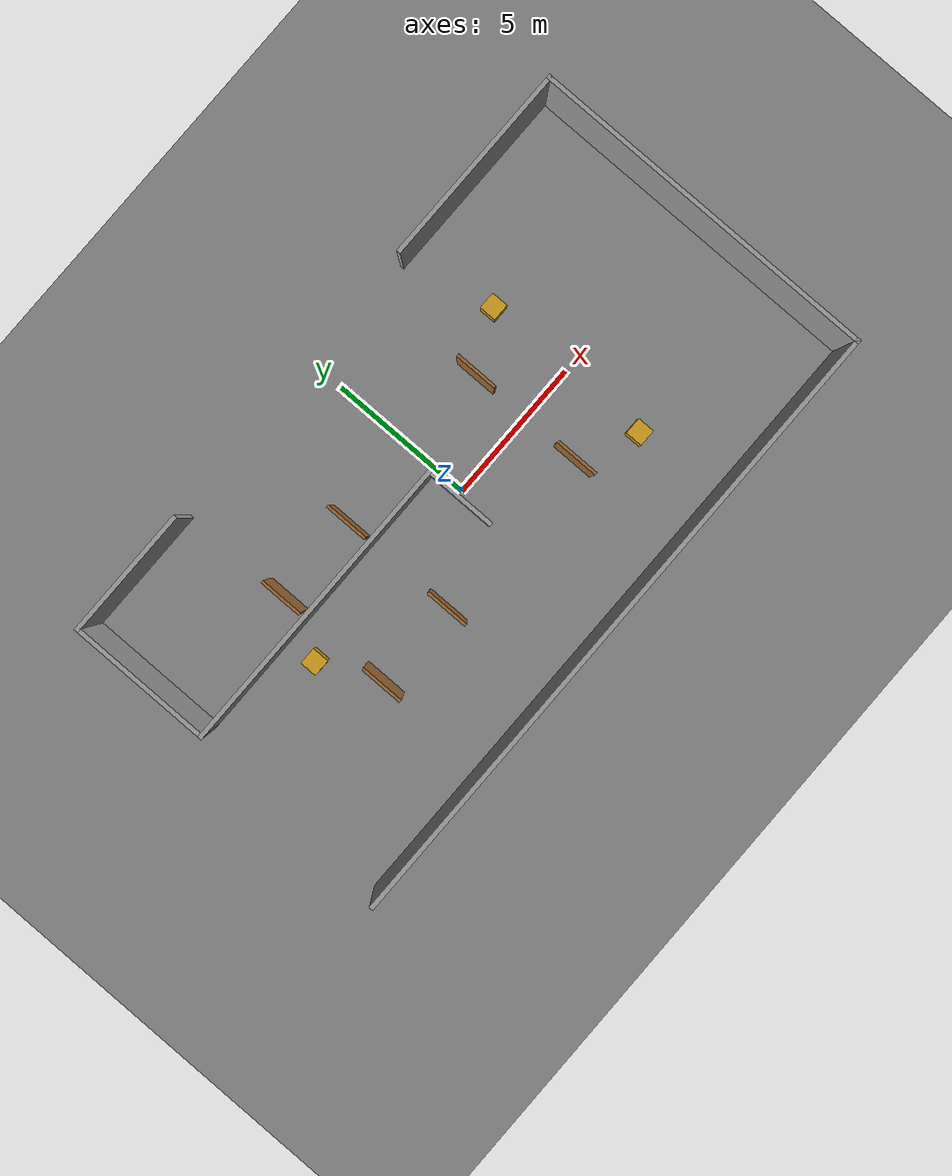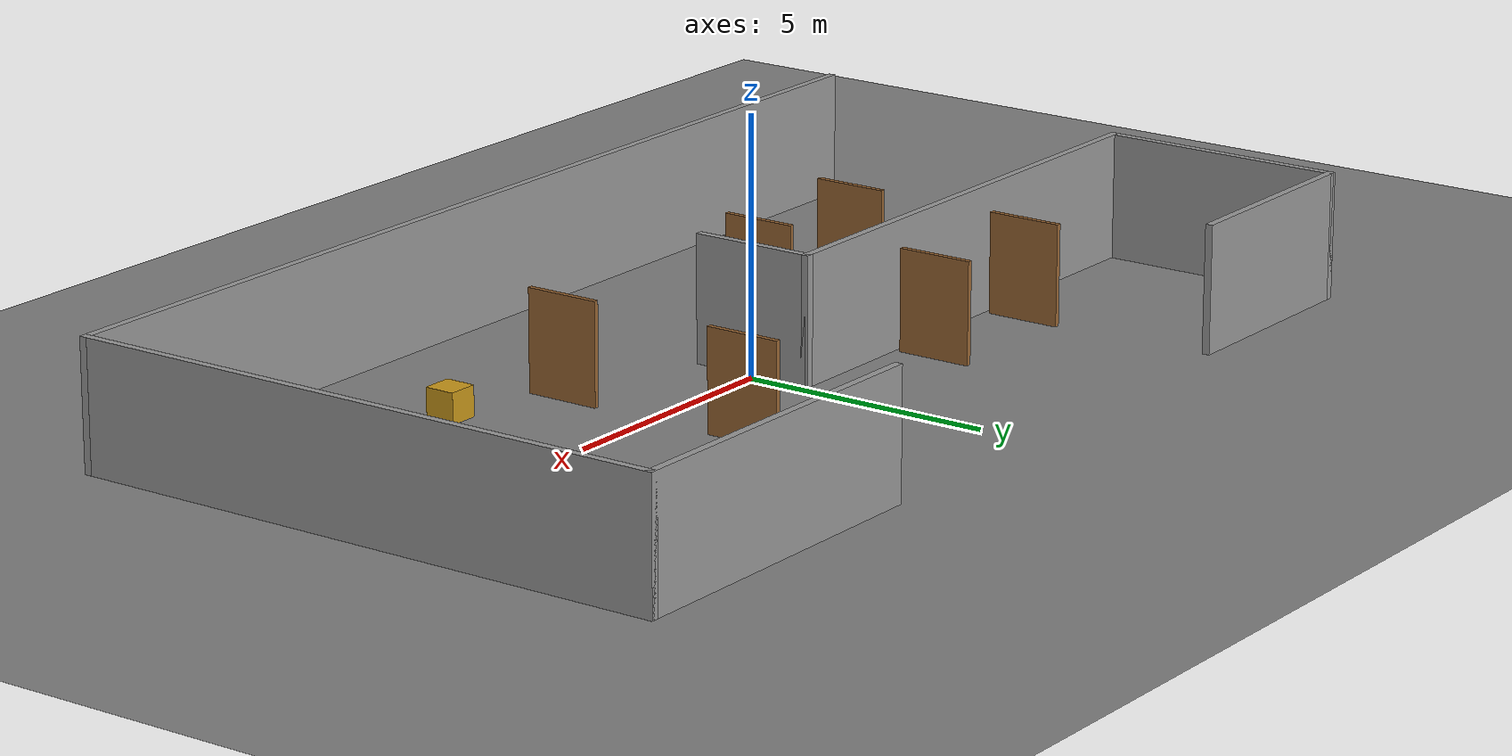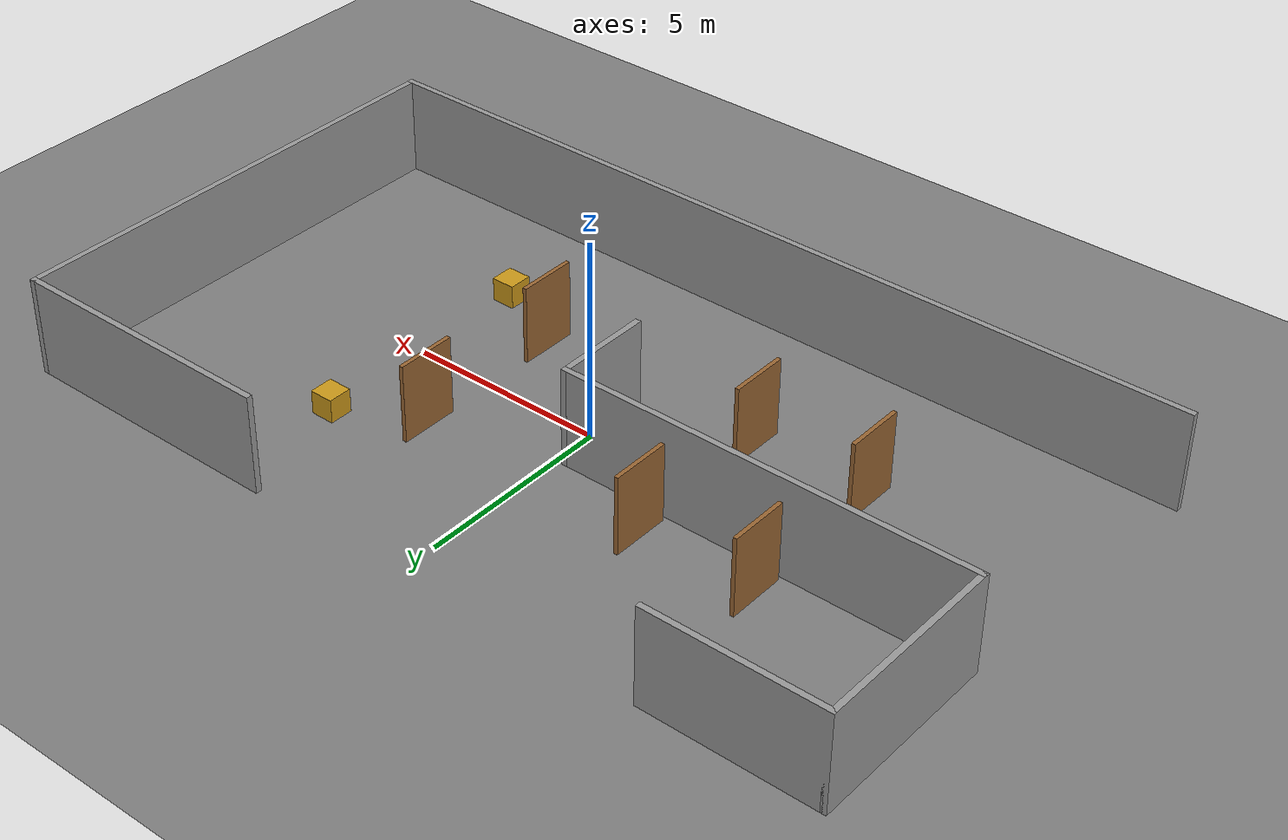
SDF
<?xml version="1.0"?>
<sdf version="1.6">
  <world name="warehouse_test">
    <physics type="ode">
      <max_step_size>0.001</max_step_size>
      <real_time_factor>1.0</real_time_factor>
      <real_time_update_rate>1000</real_time_update_rate>
    </physics>

    <scene>
      <ambient>0.8 0.8 0.8 1</ambient>
      <shadows>true</shadows>
      <grid>false</grid>
    </scene>

    <light type="directional" name="sun">
      <cast_shadows>true</cast_shadows>
      <pose>0 0 10 0 0 0</pose>
      <diffuse>0.8 0.8 0.8 1</diffuse>
      <specular>0.2 0.2 0.2 1</specular>
      <attenuation>
        <range>1000</range>
        <constant>0.9</constant>
        <linear>0.01</linear>
        <quadratic>0.001</quadratic>
      </attenuation>
      <direction>-0.5 0.1 -0.9</direction>
    </light>

    <!-- 地面 -->
    <model name="ground_plane">
      <static>true</static>
      <link name="link">
        <collision name="collision">
          <geometry>
            <plane><normal>0 0 1</normal><size>100 100</size></plane>
          </geometry>
          <surface>
            <friction><ode><mu>100</mu><mu2>100</mu2></ode></friction>
          </surface>
        </collision>
        <visual name="visual">
          <geometry>
            <plane><normal>0 0 1</normal><size>100 100</size></plane>
          </geometry>
          <material>
            <ambient>0.5 0.5 0.5 1</ambient>
            <diffuse>0.5 0.5 0.5 1</diffuse>
            <specular>0.1 0.1 0.1 1</specular>
          </material>
        </visual>
      </link>
    </model>

    <!-- 仓库建筑（含墙壁，用于 SLAM 特征提取） -->
    <include>
      <name>warehouse</name>
      <pose>0 0 0 0 0 0</pose>
      <uri>model://warehouse</uri>
    </include>

    <!-- 仓库内障碍物：货架柱（用于丰富 SLAM 特征点） -->
    <model name="shelves">
      <static>true</static>
      <link name="shelf_a1">
        <pose>-6 2 1.0 0 0 0</pose>
        <collision name="collision"><geometry><box><size>0.1 1.5 2.0</size></box></geometry></collision>
        <visual name="visual"><geometry><box><size>0.1 1.5 2.0</size></box></geometry>
          <material><ambient>0.6 0.4 0.2 1</ambient></material>
        </visual>
      </link>
      <link name="shelf_a2">
        <pose>-3 2 1.0 0 0 0</pose>
        <collision name="collision"><geometry><box><size>0.1 1.5 2.0</size></box></geometry></collision>
        <visual name="visual"><geometry><box><size>0.1 1.5 2.0</size></box></geometry>
          <material><ambient>0.6 0.4 0.2 1</ambient></material>
        </visual>
      </link>
      <link name="shelf_b1">
        <pose>-6 -2 1.0 0 0 0</pose>
        <collision name="collision"><geometry><box><size>0.1 1.5 2.0</size></box></geometry></collision>
        <visual name="visual"><geometry><box><size>0.1 1.5 2.0</size></box></geometry>
          <material><ambient>0.6 0.4 0.2 1</ambient></material>
        </visual>
      </link>
      <link name="shelf_b2">
        <pose>-3 -2 1.0 0 0 0</pose>
        <collision name="collision"><geometry><box><size>0.1 1.5 2.0</size></box></geometry></collision>
        <visual name="visual"><geometry><box><size>0.1 1.5 2.0</size></box></geometry>
          <material><ambient>0.6 0.4 0.2 1</ambient></material>
        </visual>
      </link>
      <link name="shelf_c1">
        <pose>3 2 1.0 0 0 0</pose>
        <collision name="collision"><geometry><box><size>0.1 1.5 2.0</size></box></geometry></collision>
        <visual name="visual"><geometry><box><size>0.1 1.5 2.0</size></box></geometry>
          <material><ambient>0.6 0.4 0.2 1</ambient></material>
        </visual>
      </link>
      <link name="shelf_c2">
        <pose>3 -2 1.0 0 0 0</pose>
        <collision name="collision"><geometry><box><size>0.1 1.5 2.0</size></box></geometry></collision>
        <visual name="visual"><geometry><box><size>0.1 1.5 2.0</size></box></geometry>
          <material><ambient>0.6 0.4 0.2 1</ambient></material>
        </visual>
      </link>
    </model>

    <!-- 仓库内散放箱子 -->
    <model name="boxes">
      <static>true</static>
      <link name="box_1">
        <pose>-7 0 0.3 0 0 0</pose>
        <collision name="collision"><geometry><box><size>0.6 0.6 0.6</size></box></geometry></collision>
        <visual name="visual"><geometry><box><size>0.6 0.6 0.6</size></box></geometry>
          <material><ambient>0.8 0.6 0.1 1</ambient></material>
        </visual>
      </link>
      <link name="box_2">
        <pose>5 3 0.3 0 0 0</pose>
        <collision name="collision"><geometry><box><size>0.6 0.6 0.6</size></box></geometry></collision>
        <visual name="visual"><geometry><box><size>0.6 0.6 0.6</size></box></geometry>
          <material><ambient>0.8 0.6 0.1 1</ambient></material>
        </visual>
      </link>
      <link name="box_3">
        <pose>5 -3 0.3 0 0 0</pose>
        <collision name="collision"><geometry><box><size>0.6 0.6 0.6</size></box></geometry></collision>
        <visual name="visual"><geometry><box><size>0.6 0.6 0.6</size></box></geometry>
          <material><ambient>0.8 0.6 0.1 1</ambient></material>
        </visual>
      </link>
    </model>

    <gui fullscreen='0'>
      <camera name='user_camera'>
        <pose>0 -20 15 0 0.6 1.5708</pose>
        <view_controller>orbit</view_controller>
      </camera>
    </gui>
  </world>
</sdf>

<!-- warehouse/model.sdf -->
<sdf version='1.7'>
  <model name='warehouse'>
    <pose>-1.25488 0.185557 0 0 -0 0</pose>
    <link name='Wall_0'>
      <collision name='Wall_0_Collision'>
        <geometry>
          <box>
            <size>2.5 0.15 2.5</size>
          </box>
        </geometry>
        <pose>0 0 1.25 0 -0 0</pose>
      </collision>
      <visual name='Wall_0_Visual'>
        <pose>0 0 1.25 0 -0 0</pose>
        <geometry>
          <box>
            <size>2.5 0.15 2.5</size>
          </box>
        </geometry>
        <material>
          <script>
            <uri>file://media/materials/scripts/gazebo.material</uri>
            <name>Gazebo/Grey</name>
          </script>
          <ambient>1 1 1 1</ambient>
        </material>
        <meta>
          <layer>0</layer>
        </meta>
      </visual>
      <pose>-0.218553 -0.103697 0 0 -0 1.5708</pose>
    </link>
    <link name='Wall_1'>
      <collision name='Wall_1_Collision'>
        <geometry>
          <box>
            <size>10.5 0.15 2.5</size>
          </box>
        </geometry>
        <pose>0 0 1.25 0 -0 0</pose>
      </collision>
      <visual name='Wall_1_Visual'>
        <pose>0 0 1.25 0 -0 0</pose>
        <geometry>
          <box>
            <size>10.5 0.15 2.5</size>
          </box>
        </geometry>
        <material>
          <script>
            <uri>file://media/materials/scripts/gazebo.material</uri>
            <name>Gazebo/Grey</name>
          </script>
          <ambient>1 1 1 1</ambient>
        </material>
        <meta>
          <layer>0</layer>
        </meta>
      </visual>
      <pose>-5.39355 1.0713 0 0 -0 3.14159</pose>
    </link>
    <link name='Wall_2'>
      <collision name='Wall_2_Collision'>
        <geometry>
          <box>
            <size>5 0.15 2.5</size>
          </box>
        </geometry>
        <pose>0 0 1.25 0 -0 0</pose>
      </collision>
      <visual name='Wall_2_Visual'>
        <pose>0 0 1.25 0 -0 0</pose>
        <geometry>
          <box>
            <size>5 0.15 2.5</size>
          </box>
        </geometry>
        <material>
          <script>
            <uri>file://media/materials/scripts/gazebo.material</uri>
            <name>Gazebo/Grey</name>
          </script>
          <ambient>1 1 1 1</ambient>
        </material>
        <meta>
          <layer>0</layer>
        </meta>
      </visual>
      <pose>-10.5686 3.4963 0 0 -0 1.5708</pose>
    </link>
    <link name='Wall_3'>
      <collision name='Wall_3_Collision'>
        <geometry>
          <box>
            <size>4.5 0.15 2.5</size>
          </box>
        </geometry>
        <pose>0 0 1.25 0 -0 0</pose>
      </collision>
      <visual name='Wall_3_Visual'>
        <pose>0 0 1.25 0 -0 0</pose>
        <geometry>
          <box>
            <size>4.5 0.15 2.5</size>
          </box>
        </geometry>
        <material>
          <script>
            <uri>file://media/materials/scripts/gazebo.material</uri>
            <name>Gazebo/Grey</name>
          </script>
          <ambient>1 1 1 1</ambient>
        </material>
        <meta>
          <layer>0</layer>
        </meta>
      </visual>
      <pose>-8.39355 5.9213 0 0 -0 0</pose>
    </link>
    <link name='Wall_5'>
      <collision name='Wall_5_Collision'>
        <geometry>
          <box>
            <size>7 0.15 2.5</size>
          </box>
        </geometry>
        <pose>0 0 1.25 0 -0 0</pose>
      </collision>
      <visual name='Wall_5_Visual'>
        <pose>0 0 1.25 0 -0 0</pose>
        <geometry>
          <box>
            <size>7 0.15 2.5</size>
          </box>
        </geometry>
        <material>
          <script>
            <uri>file://media/materials/scripts/gazebo.material</uri>
            <name>Gazebo/Grey</name>
          </script>
          <ambient>1 1 1 1</ambient>
        </material>
        <meta>
          <layer>0</layer>
        </meta>
      </visual>
      <pose>7.625 6.05 0 0 -0 0</pose>
    </link>
    <link name='Wall_6'>
      <collision name='Wall_6_Collision'>
        <geometry>
          <box>
            <size>12.25 0.15 2.5</size>
          </box>
        </geometry>
        <pose>0 0 1.25 0 -0 0</pose>
      </collision>
      <visual name='Wall_6_Visual'>
        <pose>0 0 1.25 0 -0 0</pose>
        <geometry>
          <box>
            <size>12.25 0.15 2.5</size>
          </box>
        </geometry>
        <material>
          <script>
            <uri>file://media/materials/scripts/gazebo.material</uri>
            <name>Gazebo/Grey</name>
          </script>
          <ambient>1 1 1 1</ambient>
        </material>
        <meta>
          <layer>0</layer>
        </meta>
      </visual>
      <pose>11.05 -0 0 0 -0 -1.5708</pose>
    </link>
    <link name='Wall_7'>
      <collision name='Wall_7_Collision'>
        <geometry>
          <box>
            <size>22.25 0.15 2.5</size>
          </box>
        </geometry>
        <pose>0 0 1.25 0 -0 0</pose>
      </collision>
      <visual name='Wall_7_Visual'>
        <pose>0 0 1.25 0 -0 0</pose>
        <geometry>
          <box>
            <size>22.25 0.15 2.5</size>
          </box>
        </geometry>
        <material>
          <script>
            <uri>file://media/materials/scripts/gazebo.material</uri>
            <name>Gazebo/Grey</name>
          </script>
          <ambient>1 1 1 1</ambient>
        </material>
        <meta>
          <layer>0</layer>
        </meta>
      </visual>
      <pose>-0 -6.05 0 0 -0 3.14159</pose>
    </link>
    <static>1</static>
  </model>
</sdf>
